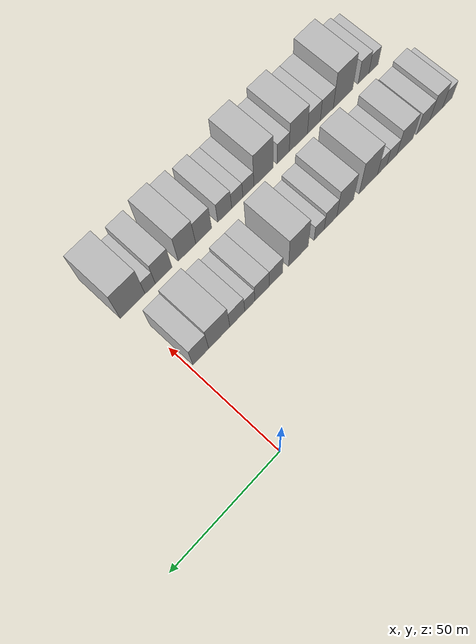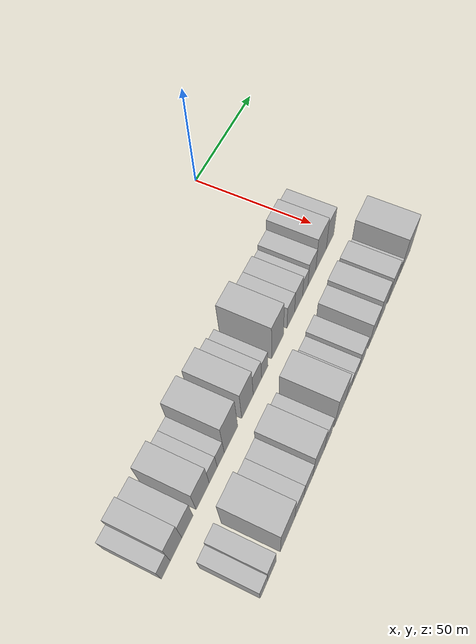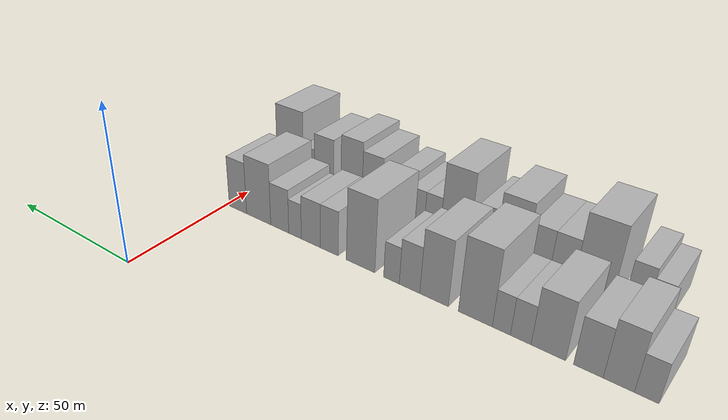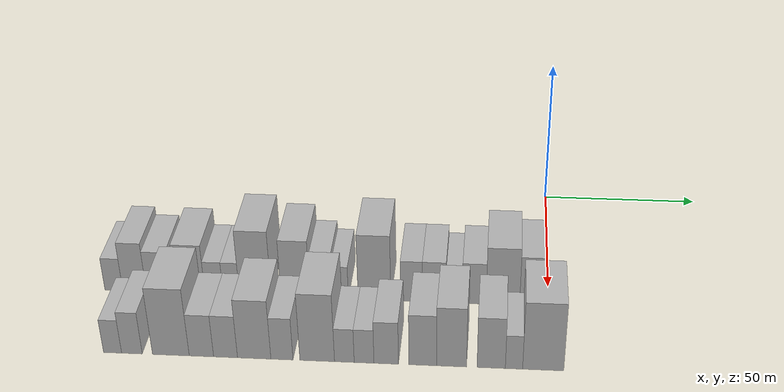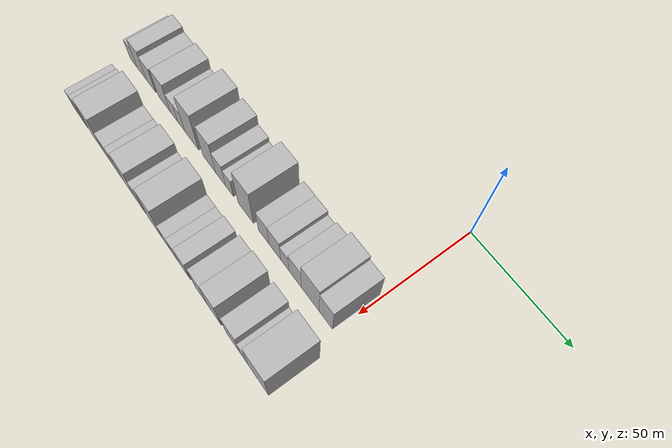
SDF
<sdf version="1.6">
 <world name="default">
  <model name="building_17">
   <static>1</static>
   <pose>50.0000 -133.4870 0 0.000000 0.000000 0.000000</pose>
   <link name="link">
    <pose>0 0 6.00 0 0 0</pose>
    <collision name="collision"><geometry><box><size>20.0000 5.5748 12.0000</size></box></geometry></collision>
    <visual name="visual">
     <cast_shadows>0</cast_shadows>
     <geometry><box><size>20.0000 5.5748 12.0000</size></box></geometry>
     <material>
      <script>
       <uri>model://HANNAS_wall/materials/scripts</uri>
       <uri>model://HANNAS_wall/materials/textures</uri>
       <name>vrc/HANNAS_wall</name>
      </script>
     </material>
    </visual>
   </link>
  </model>
  <model name="building_18">
   <static>1</static>
   <pose>50.0000 -127.0307 0 0.000000 0.000000 0.000000</pose>
   <link name="link">
    <pose>0 0 9.00 0 0 0</pose>
    <collision name="collision"><geometry><box><size>20.0000 7.3379 18.0000</size></box></geometry></collision>
    <visual name="visual">
     <cast_shadows>0</cast_shadows>
     <geometry><box><size>20.0000 7.3379 18.0000</size></box></geometry>
     <material>
      <script>
       <uri>model://HANNAS_wall/materials/scripts</uri>
       <uri>model://HANNAS_wall/materials/textures</uri>
       <name>vrc/HANNAS_wall</name>
      </script>
     </material>
    </visual>
   </link>
  </model>
  <model name="building_19">
   <static>1</static>
   <pose>50.0000 -119.7201 0 0.000000 0.000000 0.000000</pose>
   <link name="link">
    <pose>0 0 7.50 0 0 0</pose>
    <collision name="collision"><geometry><box><size>20.0000 7.2834 15.0000</size></box></geometry></collision>
    <visual name="visual">
     <cast_shadows>0</cast_shadows>
     <geometry><box><size>20.0000 7.2834 15.0000</size></box></geometry>
     <material>
      <script>
       <uri>model://HANNAS_wall/materials/scripts</uri>
       <uri>model://HANNAS_wall/materials/textures</uri>
       <name>vrc/HANNAS_wall</name>
      </script>
     </material>
    </visual>
   </link>
  </model>
  <model name="building_20">
   <static>1</static>
   <pose>50.0000 -109.5894 0 0.000000 0.000000 0.000000</pose>
   <link name="link">
    <pose>0 0 9.00 0 0 0</pose>
    <collision name="collision"><geometry><box><size>20.0000 8.9779 18.0000</size></box></geometry></collision>
    <visual name="visual">
     <cast_shadows>0</cast_shadows>
     <geometry><box><size>20.0000 8.9779 18.0000</size></box></geometry>
     <material>
      <script>
       <uri>model://HANNAS_wall/materials/scripts</uri>
       <uri>model://HANNAS_wall/materials/textures</uri>
       <name>vrc/HANNAS_wall</name>
      </script>
     </material>
    </visual>
   </link>
  </model>
  <model name="building_21">
   <static>1</static>
   <pose>50.0000 -102.2996 0 0.000000 0.000000 0.000000</pose>
   <link name="link">
    <pose>0 0 6.00 0 0 0</pose>
    <collision name="collision"><geometry><box><size>20.0000 5.6018 12.0000</size></box></geometry></collision>
    <visual name="visual">
     <cast_shadows>0</cast_shadows>
     <geometry><box><size>20.0000 5.6018 12.0000</size></box></geometry>
     <material>
      <script>
       <uri>model://HANNAS_wall/materials/scripts</uri>
       <uri>model://HANNAS_wall/materials/textures</uri>
       <name>vrc/HANNAS_wall</name>
      </script>
     </material>
    </visual>
   </link>
  </model>
  <model name="building_22">
   <static>1</static>
   <pose>50.0000 -96.9715 0 0.000000 0.000000 0.000000</pose>
   <link name="link">
    <pose>0 0 6.00 0 0 0</pose>
    <collision name="collision"><geometry><box><size>20.0000 5.0544 12.0000</size></box></geometry></collision>
    <visual name="visual">
     <cast_shadows>0</cast_shadows>
     <geometry><box><size>20.0000 5.0544 12.0000</size></box></geometry>
     <material>
      <script>
       <uri>model://HANNAS_wall/materials/scripts</uri>
       <uri>model://HANNAS_wall/materials/textures</uri>
       <name>vrc/HANNAS_wall</name>
      </script>
     </material>
    </visual>
   </link>
  </model>
  <model name="building_23">
   <static>1</static>
   <pose>50.0000 -89.5114 0 0.000000 0.000000 0.000000</pose>
   <link name="link">
    <pose>0 0 12.00 0 0 0</pose>
    <collision name="collision"><geometry><box><size>20.0000 9.8659 24.0000</size></box></geometry></collision>
    <visual name="visual">
     <cast_shadows>0</cast_shadows>
     <geometry><box><size>20.0000 9.8659 24.0000</size></box></geometry>
     <material>
      <script>
       <uri>model://HANNAS_wall/materials/scripts</uri>
       <uri>model://HANNAS_wall/materials/textures</uri>
       <name>vrc/HANNAS_wall</name>
      </script>
     </material>
    </visual>
   </link>
  </model>
  <model name="building_24">
   <static>1</static>
   <pose>50.0000 -77.1458 0 0.000000 0.000000 0.000000</pose>
   <link name="link">
    <pose>0 0 10.50 0 0 0</pose>
    <collision name="collision"><geometry><box><size>20.0000 8.8653 21.0000</size></box></geometry></collision>
    <visual name="visual">
     <cast_shadows>0</cast_shadows>
     <geometry><box><size>20.0000 8.8653 21.0000</size></box></geometry>
     <material>
      <script>
       <uri>model://HANNAS_wall/materials/scripts</uri>
       <uri>model://HANNAS_wall/materials/textures</uri>
       <name>vrc/HANNAS_wall</name>
      </script>
     </material>
    </visual>
   </link>
  </model>
  <model name="building_25">
   <static>1</static>
   <pose>50.0000 -69.4078 0 0.000000 0.000000 0.000000</pose>
   <link name="link">
    <pose>0 0 7.50 0 0 0</pose>
    <collision name="collision"><geometry><box><size>20.0000 6.6107 15.0000</size></box></geometry></collision>
    <visual name="visual">
     <cast_shadows>0</cast_shadows>
     <geometry><box><size>20.0000 6.6107 15.0000</size></box></geometry>
     <material>
      <script>
       <uri>model://HANNAS_wall/materials/scripts</uri>
       <uri>model://HANNAS_wall/materials/textures</uri>
       <name>vrc/HANNAS_wall</name>
      </script>
     </material>
    </visual>
   </link>
  </model>
  <model name="building_26">
   <static>1</static>
   <pose>50.0000 -63.4971 0 0.000000 0.000000 0.000000</pose>
   <link name="link">
    <pose>0 0 6.00 0 0 0</pose>
    <collision name="collision"><geometry><box><size>20.0000 5.2108 12.0000</size></box></geometry></collision>
    <visual name="visual">
     <cast_shadows>0</cast_shadows>
     <geometry><box><size>20.0000 5.2108 12.0000</size></box></geometry>
     <material>
      <script>
       <uri>model://HANNAS_wall/materials/scripts</uri>
       <uri>model://HANNAS_wall/materials/textures</uri>
       <name>vrc/HANNAS_wall</name>
      </script>
     </material>
    </visual>
   </link>
  </model>
  <model name="building_27">
   <static>1</static>
   <pose>50.0000 -52.8952 0 0.000000 0.000000 0.000000</pose>
   <link name="link">
    <pose>0 0 12.00 0 0 0</pose>
    <collision name="collision"><geometry><box><size>20.0000 9.9930 24.0000</size></box></geometry></collision>
    <visual name="visual">
     <cast_shadows>0</cast_shadows>
     <geometry><box><size>20.0000 9.9930 24.0000</size></box></geometry>
     <material>
      <script>
       <uri>model://HANNAS_wall/materials/scripts</uri>
       <uri>model://HANNAS_wall/materials/textures</uri>
       <name>vrc/HANNAS_wall</name>
      </script>
     </material>
    </visual>
   </link>
  </model>
  <model name="building_28">
   <static>1</static>
   <pose>50.0000 -41.5784 0 0.000000 0.000000 0.000000</pose>
   <link name="link">
    <pose>0 0 7.50 0 0 0</pose>
    <collision name="collision"><geometry><box><size>20.0000 6.6407 15.0000</size></box></geometry></collision>
    <visual name="visual">
     <cast_shadows>0</cast_shadows>
     <geometry><box><size>20.0000 6.6407 15.0000</size></box></geometry>
     <material>
      <script>
       <uri>model://HANNAS_wall/materials/scripts</uri>
       <uri>model://HANNAS_wall/materials/textures</uri>
       <name>vrc/HANNAS_wall</name>
      </script>
     </material>
    </visual>
   </link>
  </model>
  <model name="building_29">
   <static>1</static>
   <pose>50.0000 -34.6689 0 0.000000 0.000000 0.000000</pose>
   <link name="link">
    <pose>0 0 7.50 0 0 0</pose>
    <collision name="collision"><geometry><box><size>20.0000 7.1783 15.0000</size></box></geometry></collision>
    <visual name="visual">
     <cast_shadows>0</cast_shadows>
     <geometry><box><size>20.0000 7.1783 15.0000</size></box></geometry>
     <material>
      <script>
       <uri>model://HANNAS_wall/materials/scripts</uri>
       <uri>model://HANNAS_wall/materials/textures</uri>
       <name>vrc/HANNAS_wall</name>
      </script>
     </material>
    </visual>
   </link>
  </model>
  <model name="building_30">
   <static>1</static>
   <pose>50.0000 -28.6052 0 0.000000 0.000000 0.000000</pose>
   <link name="link">
    <pose>0 0 6.00 0 0 0</pose>
    <collision name="collision"><geometry><box><size>20.0000 4.9491 12.0000</size></box></geometry></collision>
    <visual name="visual">
     <cast_shadows>0</cast_shadows>
     <geometry><box><size>20.0000 4.9491 12.0000</size></box></geometry>
     <material>
      <script>
       <uri>model://HANNAS_wall/materials/scripts</uri>
       <uri>model://HANNAS_wall/materials/textures</uri>
       <name>vrc/HANNAS_wall</name>
      </script>
     </material>
    </visual>
   </link>
  </model>
  <model name="building_31">
   <static>1</static>
   <pose>50.0000 -22.5011 0 0.000000 0.000000 0.000000</pose>
   <link name="link">
    <pose>0 0 7.50 0 0 0</pose>
    <collision name="collision"><geometry><box><size>20.0000 7.2591 15.0000</size></box></geometry></collision>
    <visual name="visual">
     <cast_shadows>0</cast_shadows>
     <geometry><box><size>20.0000 7.2591 15.0000</size></box></geometry>
     <material>
      <script>
       <uri>model://HANNAS_wall/materials/scripts</uri>
       <uri>model://HANNAS_wall/materials/textures</uri>
       <name>vrc/HANNAS_wall</name>
      </script>
     </material>
    </visual>
   </link>
  </model>
  <model name="building_32">
   <static>1</static>
   <pose>50.0000 -13.8042 0 0.000000 0.000000 0.000000</pose>
   <link name="link">
    <pose>0 0 10.50 0 0 0</pose>
    <collision name="collision"><geometry><box><size>20.0000 10.1348 21.0000</size></box></geometry></collision>
    <visual name="visual">
     <cast_shadows>0</cast_shadows>
     <geometry><box><size>20.0000 10.1348 21.0000</size></box></geometry>
     <material>
      <script>
       <uri>model://HANNAS_wall/materials/scripts</uri>
       <uri>model://HANNAS_wall/materials/textures</uri>
       <name>vrc/HANNAS_wall</name>
      </script>
     </material>
    </visual>
   </link>
  </model>
  <model name="building_33">
   <static>1</static>
   <pose>50.0000 -4.9800 0 0.000000 0.000000 0.000000</pose>
   <link name="link">
    <pose>0 0 9.00 0 0 0</pose>
    <collision name="collision"><geometry><box><size>20.0000 7.5135 18.0000</size></box></geometry></collision>
    <visual name="visual">
     <cast_shadows>0</cast_shadows>
     <geometry><box><size>20.0000 7.5135 18.0000</size></box></geometry>
     <material>
      <script>
       <uri>model://HANNAS_wall/materials/scripts</uri>
       <uri>model://HANNAS_wall/materials/textures</uri>
       <name>vrc/HANNAS_wall</name>
      </script>
     </material>
    </visual>
   </link>
  </model>
  <model name="building_81">
   <static>1</static>
   <pose>79.0000 -126.1521 0 0.000000 0.000000 0.000000</pose>
   <link name="link">
    <pose>0 0 6.00 0 0 0</pose>
    <collision name="collision"><geometry><box><size>20.0000 5.2923 12.0000</size></box></geometry></collision>
    <visual name="visual">
     <cast_shadows>0</cast_shadows>
     <geometry><box><size>20.0000 5.2923 12.0000</size></box></geometry>
     <material>
      <script>
       <uri>model://HANNAS_wall/materials/scripts</uri>
       <uri>model://HANNAS_wall/materials/textures</uri>
       <name>vrc/HANNAS_wall</name>
      </script>
     </material>
    </visual>
   </link>
  </model>
  <model name="building_82">
   <static>1</static>
   <pose>79.0000 -120.4873 0 0.000000 0.000000 0.000000</pose>
   <link name="link">
    <pose>0 0 7.50 0 0 0</pose>
    <collision name="collision"><geometry><box><size>20.0000 6.0373 15.0000</size></box></geometry></collision>
    <visual name="visual">
     <cast_shadows>0</cast_shadows>
     <geometry><box><size>20.0000 6.0373 15.0000</size></box></geometry>
     <material>
      <script>
       <uri>model://HANNAS_wall/materials/scripts</uri>
       <uri>model://HANNAS_wall/materials/textures</uri>
       <name>vrc/HANNAS_wall</name>
      </script>
     </material>
    </visual>
   </link>
  </model>
  <model name="building_83">
   <static>1</static>
   <pose>79.0000 -109.1049 0 0.000000 0.000000 0.000000</pose>
   <link name="link">
    <pose>0 0 12.00 0 0 0</pose>
    <collision name="collision"><geometry><box><size>20.0000 10.7276 24.0000</size></box></geometry></collision>
    <visual name="visual">
     <cast_shadows>0</cast_shadows>
     <geometry><box><size>20.0000 10.7276 24.0000</size></box></geometry>
     <material>
      <script>
       <uri>model://HANNAS_wall/materials/scripts</uri>
       <uri>model://HANNAS_wall/materials/textures</uri>
       <name>vrc/HANNAS_wall</name>
      </script>
     </material>
    </visual>
   </link>
  </model>
  <model name="building_84">
   <static>1</static>
   <pose>79.0000 -100.1925 0 0.000000 0.000000 0.000000</pose>
   <link name="link">
    <pose>0 0 7.50 0 0 0</pose>
    <collision name="collision"><geometry><box><size>20.0000 7.0971 15.0000</size></box></geometry></collision>
    <visual name="visual">
     <cast_shadows>0</cast_shadows>
     <geometry><box><size>20.0000 7.0971 15.0000</size></box></geometry>
     <material>
      <script>
       <uri>model://HANNAS_wall/materials/scripts</uri>
       <uri>model://HANNAS_wall/materials/textures</uri>
       <name>vrc/HANNAS_wall</name>
      </script>
     </material>
    </visual>
   </link>
  </model>
  <model name="building_85">
   <static>1</static>
   <pose>79.0000 -93.1695 0 0.000000 0.000000 0.000000</pose>
   <link name="link">
    <pose>0 0 7.50 0 0 0</pose>
    <collision name="collision"><geometry><box><size>20.0000 6.9489 15.0000</size></box></geometry></collision>
    <visual name="visual">
     <cast_shadows>0</cast_shadows>
     <geometry><box><size>20.0000 6.9489 15.0000</size></box></geometry>
     <material>
      <script>
       <uri>model://HANNAS_wall/materials/scripts</uri>
       <uri>model://HANNAS_wall/materials/textures</uri>
       <name>vrc/HANNAS_wall</name>
      </script>
     </material>
    </visual>
   </link>
  </model>
  <model name="building_86">
   <static>1</static>
   <pose>79.0000 -84.8528 0 0.000000 0.000000 0.000000</pose>
   <link name="link">
    <pose>0 0 10.50 0 0 0</pose>
    <collision name="collision"><geometry><box><size>20.0000 9.6846 21.0000</size></box></geometry></collision>
    <visual name="visual">
     <cast_shadows>0</cast_shadows>
     <geometry><box><size>20.0000 9.6846 21.0000</size></box></geometry>
     <material>
      <script>
       <uri>model://HANNAS_wall/materials/scripts</uri>
       <uri>model://HANNAS_wall/materials/textures</uri>
       <name>vrc/HANNAS_wall</name>
      </script>
     </material>
    </visual>
   </link>
  </model>
  <model name="building_87">
   <static>1</static>
   <pose>79.0000 -76.8187 0 0.000000 0.000000 0.000000</pose>
   <link name="link">
    <pose>0 0 7.50 0 0 0</pose>
    <collision name="collision"><geometry><box><size>20.0000 6.3835 15.0000</size></box></geometry></collision>
    <visual name="visual">
     <cast_shadows>0</cast_shadows>
     <geometry><box><size>20.0000 6.3835 15.0000</size></box></geometry>
     <material>
      <script>
       <uri>model://HANNAS_wall/materials/scripts</uri>
       <uri>model://HANNAS_wall/materials/textures</uri>
       <name>vrc/HANNAS_wall</name>
      </script>
     </material>
    </visual>
   </link>
  </model>
  <model name="building_88">
   <static>1</static>
   <pose>79.0000 -66.6269 0 0.000000 0.000000 0.000000</pose>
   <link name="link">
    <pose>0 0 12.00 0 0 0</pose>
    <collision name="collision"><geometry><box><size>20.0000 10.0001 24.0000</size></box></geometry></collision>
    <visual name="visual">
     <cast_shadows>0</cast_shadows>
     <geometry><box><size>20.0000 10.0001 24.0000</size></box></geometry>
     <material>
      <script>
       <uri>model://HANNAS_wall/materials/scripts</uri>
       <uri>model://HANNAS_wall/materials/textures</uri>
       <name>vrc/HANNAS_wall</name>
      </script>
     </material>
    </visual>
   </link>
  </model>
  <model name="building_89">
   <static>1</static>
   <pose>79.0000 -58.7938 0 0.000000 0.000000 0.000000</pose>
   <link name="link">
    <pose>0 0 6.00 0 0 0</pose>
    <collision name="collision"><geometry><box><size>20.0000 5.6661 12.0000</size></box></geometry></collision>
    <visual name="visual">
     <cast_shadows>0</cast_shadows>
     <geometry><box><size>20.0000 5.6661 12.0000</size></box></geometry>
     <material>
      <script>
       <uri>model://HANNAS_wall/materials/scripts</uri>
       <uri>model://HANNAS_wall/materials/textures</uri>
       <name>vrc/HANNAS_wall</name>
      </script>
     </material>
    </visual>
   </link>
  </model>
  <model name="building_90">
   <static>1</static>
   <pose>79.0000 -53.1214 0 0.000000 0.000000 0.000000</pose>
   <link name="link">
    <pose>0 0 6.00 0 0 0</pose>
    <collision name="collision"><geometry><box><size>20.0000 5.6786 12.0000</size></box></geometry></collision>
    <visual name="visual">
     <cast_shadows>0</cast_shadows>
     <geometry><box><size>20.0000 5.6786 12.0000</size></box></geometry>
     <material>
      <script>
       <uri>model://HANNAS_wall/materials/scripts</uri>
       <uri>model://HANNAS_wall/materials/textures</uri>
       <name>vrc/HANNAS_wall</name>
      </script>
     </material>
    </visual>
   </link>
  </model>
  <model name="building_91">
   <static>1</static>
   <pose>79.0000 -46.7652 0 0.000000 0.000000 0.000000</pose>
   <link name="link">
    <pose>0 0 7.50 0 0 0</pose>
    <collision name="collision"><geometry><box><size>20.0000 7.0340 15.0000</size></box></geometry></collision>
    <visual name="visual">
     <cast_shadows>0</cast_shadows>
     <geometry><box><size>20.0000 7.0340 15.0000</size></box></geometry>
     <material>
      <script>
       <uri>model://HANNAS_wall/materials/scripts</uri>
       <uri>model://HANNAS_wall/materials/textures</uri>
       <name>vrc/HANNAS_wall</name>
      </script>
     </material>
    </visual>
   </link>
  </model>
  <model name="building_92">
   <static>1</static>
   <pose>79.0000 -36.2999 0 0.000000 0.000000 0.000000</pose>
   <link name="link">
    <pose>0 0 9.00 0 0 0</pose>
    <collision name="collision"><geometry><box><size>20.0000 7.8967 18.0000</size></box></geometry></collision>
    <visual name="visual">
     <cast_shadows>0</cast_shadows>
     <geometry><box><size>20.0000 7.8967 18.0000</size></box></geometry>
     <material>
      <script>
       <uri>model://HANNAS_wall/materials/scripts</uri>
       <uri>model://HANNAS_wall/materials/textures</uri>
       <name>vrc/HANNAS_wall</name>
      </script>
     </material>
    </visual>
   </link>
  </model>
  <model name="building_93">
   <static>1</static>
   <pose>79.0000 -28.0609 0 0.000000 0.000000 0.000000</pose>
   <link name="link">
    <pose>0 0 10.50 0 0 0</pose>
    <collision name="collision"><geometry><box><size>20.0000 8.5813 21.0000</size></box></geometry></collision>
    <visual name="visual">
     <cast_shadows>0</cast_shadows>
     <geometry><box><size>20.0000 8.5813 21.0000</size></box></geometry>
     <material>
      <script>
       <uri>model://HANNAS_wall/materials/scripts</uri>
       <uri>model://HANNAS_wall/materials/textures</uri>
       <name>vrc/HANNAS_wall</name>
      </script>
     </material>
    </visual>
   </link>
  </model>
  <model name="building_94">
   <static>1</static>
   <pose>79.0000 -16.7516 0 0.000000 0.000000 0.000000</pose>
   <link name="link">
    <pose>0 0 9.00 0 0 0</pose>
    <collision name="collision"><geometry><box><size>20.0000 8.0373 18.0000</size></box></geometry></collision>
    <visual name="visual">
     <cast_shadows>0</cast_shadows>
     <geometry><box><size>20.0000 8.0373 18.0000</size></box></geometry>
     <material>
      <script>
       <uri>model://HANNAS_wall/materials/scripts</uri>
       <uri>model://HANNAS_wall/materials/textures</uri>
       <name>vrc/HANNAS_wall</name>
      </script>
     </material>
    </visual>
   </link>
  </model>
  <model name="building_95">
   <static>1</static>
   <pose>79.0000 -10.2767 0 0.000000 0.000000 0.000000</pose>
   <link name="link">
    <pose>0 0 6.00 0 0 0</pose>
    <collision name="collision"><geometry><box><size>20.0000 4.9126 12.0000</size></box></geometry></collision>
    <visual name="visual">
     <cast_shadows>0</cast_shadows>
     <geometry><box><size>20.0000 4.9126 12.0000</size></box></geometry>
     <material>
      <script>
       <uri>model://HANNAS_wall/materials/scripts</uri>
       <uri>model://HANNAS_wall/materials/textures</uri>
       <name>vrc/HANNAS_wall</name>
      </script>
     </material>
    </visual>
   </link>
  </model>
  <model name="building_96">
   <static>1</static>
   <pose>79.0000 -1.9791 0 0.000000 0.000000 0.000000</pose>
   <link name="link">
    <pose>0 0 12.00 0 0 0</pose>
    <collision name="collision"><geometry><box><size>20.0000 11.6826 24.0000</size></box></geometry></collision>
    <visual name="visual">
     <cast_shadows>0</cast_shadows>
     <geometry><box><size>20.0000 11.6826 24.0000</size></box></geometry>
     <material>
      <script>
       <uri>model://HANNAS_wall/materials/scripts</uri>
       <uri>model://HANNAS_wall/materials/textures</uri>
       <name>vrc/HANNAS_wall</name>
      </script>
     </material>
    </visual>
   </link>
  </model>
 </world>
</sdf>
